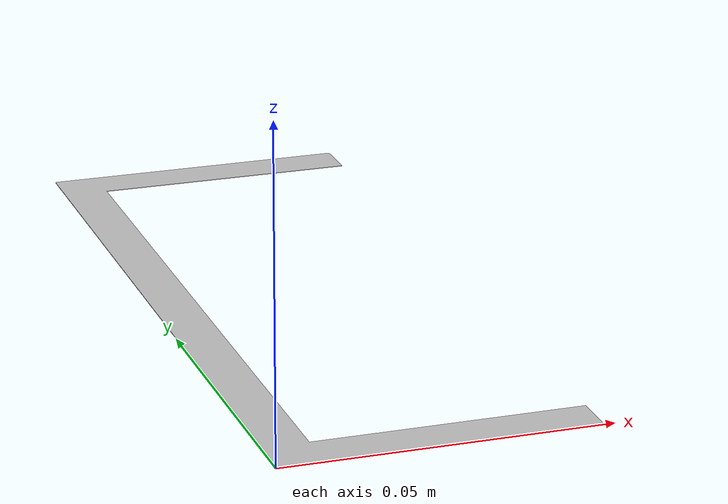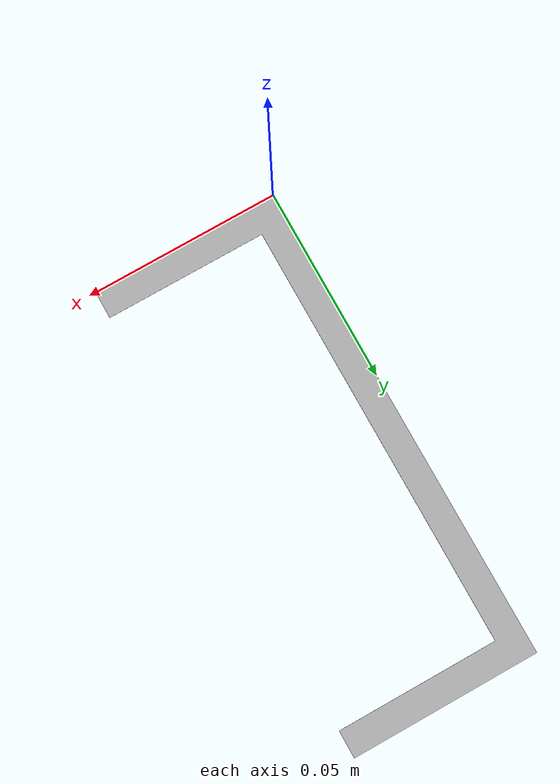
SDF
<?xml version="1.0" ?>
<sdf version="1.4">
  <model name="beam_weld_u_outline">
    <static>true</static>
    <link name="link">
      <inertial>
        <mass>1000</mass>
      </inertial>
      <collision name="collision">
        <geometry>
          <mesh>
            <uri>model://beam_weld_u_outline/meshes/beam_weld_u_outline.stl</uri>
          </mesh>
        </geometry>
      </collision>
      <visual name="visual">
        <transparency>0.0</transparency>
        <geometry>
          <mesh>
            <uri>model://beam_weld_u_outline/meshes/beam_weld_u_outline.stl</uri>
          </mesh>
        </geometry>
      </visual>
    </link>
  </model>
</sdf>
